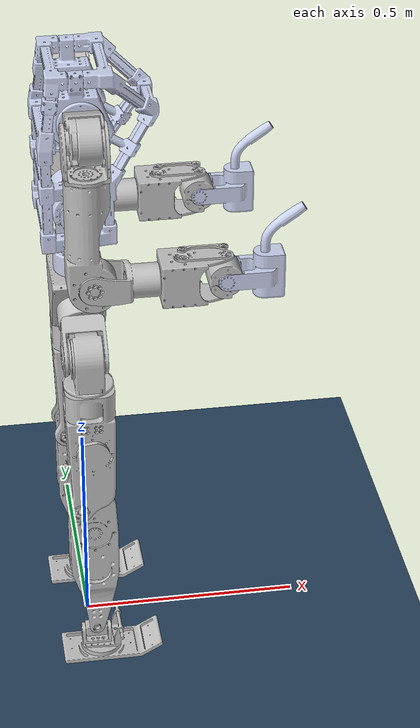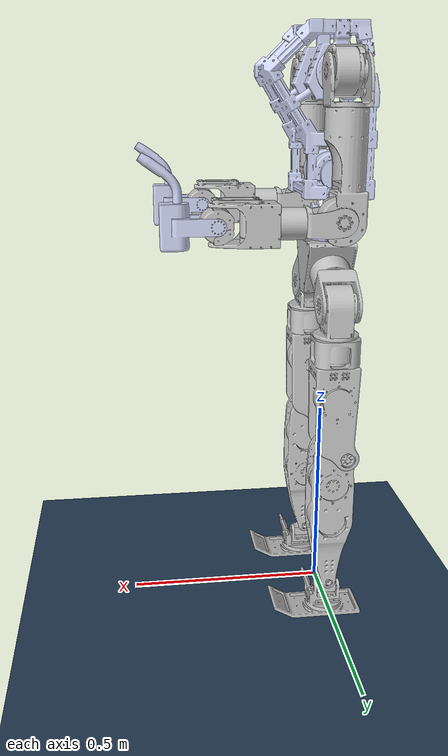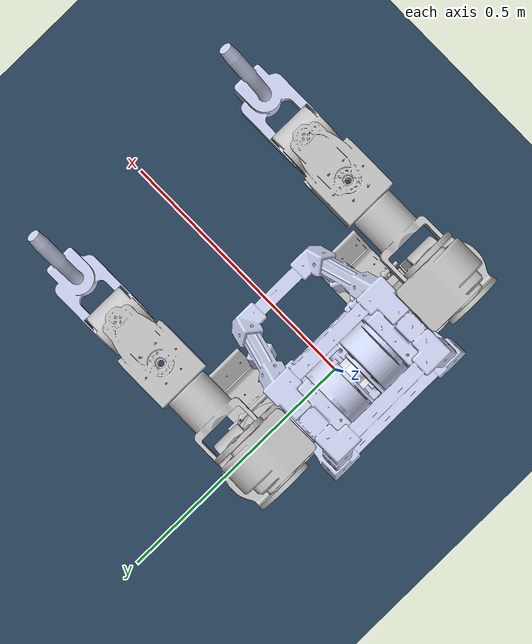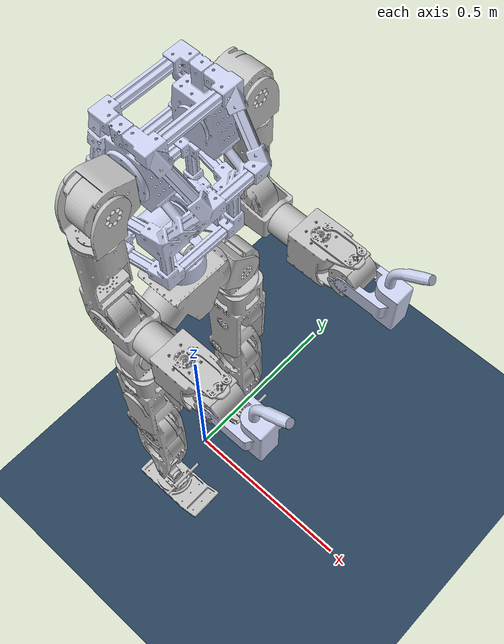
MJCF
<mujoco model="statue_main_for_urdf_w_waist">
  <compiler angle="radian" meshdir="meshes"/>

  <asset>
    <mesh name="pelvis_link" content_type="model/stl" file="pelvis_link.STL"/>
    <mesh name="left_hip_pitch_link" content_type="model/stl" file="left_hip_pitch_link.STL"/>
    <mesh name="left_hip_roll_link" content_type="model/stl" file="left_hip_roll_link.STL"/>
    <mesh name="left_hip_yaw_link" content_type="model/stl" file="left_hip_yaw_link.STL"/>
    <mesh name="left_knee_pitch_link" content_type="model/stl" file="left_knee_pitch_link.STL"/>
    <mesh name="left_ankle_pitch_link" content_type="model/stl" file="left_ankle_pitch_link.STL"/>
    <mesh name="left_ankle_roll_link" content_type="model/stl" file="left_ankle_roll_link.STL"/>
    <mesh name="right_hip_pitch_link" content_type="model/stl" file="right_hip_pitch_link.STL"/>
    <mesh name="right_hip_roll_link" content_type="model/stl" file="right_hip_roll_link.STL"/>
    <mesh name="right_hip_yaw_link" content_type="model/stl" file="right_hip_yaw_link.STL"/>
    <mesh name="right_knee_pitch_link" content_type="model/stl" file="right_knee_pitch_link.STL"/>
    <mesh name="right_ankle_pitch_link" content_type="model/stl" file="right_ankle_pitch_link.STL"/>
    <mesh name="right_ankle_roll_link" content_type="model/stl" file="right_ankle_roll_link.STL"/>
    <mesh name="waist_yaw_link" content_type="model/stl" file="waist_yaw_link.STL"/>
    <mesh name="waist_roll_link" content_type="model/stl" file="waist_roll_link.STL"/>
    <mesh name="waist_pitch_link" content_type="model/stl" file="waist_pitch_link.STL"/>
    <mesh name="left_shoulder_pitch_link" content_type="model/stl" file="left_shoulder_pitch_link.STL"/>
    <mesh name="left_shoulder_roll_link" content_type="model/stl" file="left_shoulder_roll_link.STL"/>
    <mesh name="left_shoulder_yaw_link" content_type="model/stl" file="left_shoulder_yaw_link.STL"/>
    <mesh name="left_elbow_pitch_link" content_type="model/stl" file="left_elbow_pitch_link.STL"/>
    <mesh name="left_wrist_roll_link" content_type="model/stl" file="left_wrist_roll_link.STL"/>
    <mesh name="left_wrist_yaw_link" content_type="model/stl" file="left_wrist_yaw_link.STL"/>
    <mesh name="left_welder" content_type="model/stl" file="left_welder.STL"/>
    <mesh name="right_shoulder_pitch_link" content_type="model/stl" file="right_shoulder_pitch_link.STL"/>
    <mesh name="right_shoulder_roll_link" content_type="model/stl" file="right_shoulder_roll_link.STL"/>
    <mesh name="right_shoulder_yaw_link" content_type="model/stl" file="right_shoulder_yaw_link.STL"/>
    <mesh name="right_elbow_pitch_link" content_type="model/stl" file="right_elbow_pitch_link.STL"/>
    <mesh name="right_wrist_roll_link" content_type="model/stl" file="right_wrist_roll_link.STL"/>
    <mesh name="right_wrist_yaw_link" content_type="model/stl" file="right_wrist_yaw_link.STL"/>
    <mesh name="right_welder" content_type="model/stl" file="right_welder.STL"/>
    <texture name="texplane" builtin="checker" height="512" width="512" rgb1=".2 .3 .4" rgb2=".1 .15 .2" type="2d"/>
    <material name="MatPlane" reflectance="0.5" shininess="0.01" specular="0.1" texrepeat="1 1" texture="texplane" texuniform="true"/>
  </asset>

  <worldbody>
    <light pos="0 0 1000" castshadow="true"/>
    <body name="pelvis_link" pos="0 0 0.885">
      <site name="imu" pos="0 0 0" rgba="0. 1. 0. .5"/>
      <inertial pos="0 0 0.00203708" quat="1 0 0 0" mass="2.792" diaginertia="0.01331061 0.00699516 0.01141619"/>
      <freejoint name="pelvis_link"/>
      <geom type="mesh" rgba="0.752941 0.752941 0.752941 1" mesh="pelvis_link"/>
      <body name="left_hip_pitch_link" pos="0 0.089613 -0.026765">
        <inertial pos="0.00120687 0.0321919 -0.022126" quat="0.648667 0.314246 0.620766 0.308431" mass="0.59" diaginertia="0.00147738 0.00117486 0.000975686"/>
        <joint name="left_hip_pitch_joint" pos="0 0 0" axis="0 0.906308 -0.422619" range="-2.79253 2.79253" actuatorfrcrange="-190 190"/>
        <geom type="mesh" rgba="0.75294 0.75294 0.75294 1" mesh="left_hip_pitch_link"/>
        <body name="left_hip_roll_link" pos="0.005 0.053192 -0.042099">
          <inertial pos="-0.00386468 0.00709863 -0.0206495" quat="0.997546 -0.0190194 0.0444148 0.0506713" mass="1.659" diaginertia="0.00331767 0.00278063 0.00199819"/>
          <joint name="left_hip_roll_joint" pos="0 0 0" axis="1 0 0" range="-0.523599 1.5708" actuatorfrcrange="-190 190"/>
          <geom type="mesh" rgba="0.75294 0.75294 0.75294 1" mesh="left_hip_roll_link"/>
          <body name="left_hip_yaw_link" pos="0 0.0058209 -0.078">
            <inertial pos="-0.00033252 0.00270006 -0.104969" quat="0.99952 -0.0122252 -0.0172129 -0.0226507" mass="3.58301" diaginertia="0.0274251 0.0264097 0.00729636"/>
            <joint name="left_hip_yaw_joint" pos="0 0 0" axis="0 0 1" range="-2.79253 2.79253" actuatorfrcrange="-190 190"/>
            <geom type="mesh" rgba="0.75294 0.75294 0.75294 1" mesh="left_hip_yaw_link"/>
            <body name="left_knee_pitch_link" pos="-0.03 0 -0.299">
              <inertial pos="0.0353064 0.00052044 -0.127609" quat="0.712871 0.0206849 -0.00135382 0.700988" mass="3.61355" diaginertia="0.0397111 0.0353266 0.00591074"/>
              <joint name="left_knee_pitch_joint" pos="0 0 0" axis="0 -1 0" range="-2.79253 0" actuatorfrcrange="-190 190"/>
              <geom type="mesh" rgba="0.75294 0.75294 0.75294 1" mesh="left_knee_pitch_link"/>
              <body name="left_ankle_pitch_link" pos="0.03 0 -0.353">
                <inertial pos="0 0 -0.0186834" quat="0.707107 0 0 0.707107" mass="0.4679" diaginertia="0.00017114 0.00014175 0.00012862"/>
                <joint name="left_ankle_pitch_joint" pos="0 0 0" axis="0 1 0" range="-0.872665 0.698132" actuatorfrcrange="-380 380"/>
                <geom type="mesh" rgba="0.75294 0.75294 0.75294 1" mesh="left_ankle_pitch_link"/>
                <body name="left_ankle_roll_link" pos="0 0 -0.0275">
                  <inertial pos="0.0254723 0 -0.033204" quat="0 0.753773 0 0.657135" mass="0.77978" diaginertia="0.00265853 0.00245185 0.00117912"/>
                  <joint name="left_ankle_roll_joint" pos="0 0 0" axis="1 0 0" range="-0.523599 0.523599" actuatorfrcrange="-380 380"/>
                  <geom type="mesh" rgba="0.75294 0.75294 0.75294 1" mesh="left_ankle_roll_link"/>
                </body>
              </body>
            </body>
          </body>
        </body>
      </body>
      <body name="right_hip_pitch_link" pos="0 -0.089614 -0.026765">
        <inertial pos="0.00120686 -0.0321919 -0.0221259" quat="0.308431 0.620766 0.314246 0.648667" mass="0.59" diaginertia="0.00147738 0.00117486 0.000975686"/>
        <joint name="right_hip_pitch_joint" pos="0 0 0" axis="0 -0.906308 -0.422619" range="-2.79253 2.79253" actuatorfrcrange="-190 190"/>
        <geom type="mesh" rgba="0.75294 0.75294 0.75294 1" mesh="right_hip_pitch_link"/>
        <body name="right_hip_roll_link" pos="0.005 -0.0531918 -0.0420992">
          <inertial pos="-0.0038816 -0.00726796 -0.0200622" quat="0.997191 0.0257615 0.0530214 -0.0462095" mass="1.659" diaginertia="0.00335316 0.00283826 0.00197006"/>
          <joint name="right_hip_roll_joint" pos="0 0 0" axis="1 0 0" range="-1.5708 0.523599" actuatorfrcrange="-190 190"/>
          <geom type="mesh" rgba="0.75294 0.75294 0.75294 1" mesh="right_hip_roll_link"/>
          <body name="right_hip_yaw_link" pos="0 -0.00582091 -0.078">
            <inertial pos="-0.00033433 -0.00270512 -0.104987" quat="0.999511 0.0122872 -0.0173029 0.0229597" mass="3.58301" diaginertia="0.0274302 0.0264144 0.00729607"/>
            <joint name="right_hip_yaw_joint" pos="0 0 0" axis="0 0 1" range="-2.79253 2.79253" actuatorfrcrange="-190 190"/>
            <geom type="mesh" rgba="0.75294 0.75294 0.75294 1" mesh="right_hip_yaw_link"/>
            <body name="right_knee_pitch_link" pos="-0.03 0 -0.299">
              <inertial pos="0.0353181 -0.00052044 -0.127616" quat="0.992128 -0.0171765 0.00944952 -0.123681" mass="3.61355" diaginertia="0.0399322 0.0396422 0.00591431"/>
              <joint name="right_knee_pitch_joint" pos="0 0 0" axis="0 1 0" range="0 2.79253" actuatorfrcrange="-190 190"/>
              <geom type="mesh" rgba="0.75294 0.75294 0.75294 1" mesh="right_knee_pitch_link"/>
              <body name="right_ankle_pitch_link" pos="0.03 0 -0.353">
                <inertial pos="0 0 -0.0186834" quat="0.707107 0 0 0.707107" mass="0.4679" diaginertia="0.00017114 0.00014175 0.00012862"/>
                <joint name="right_ankle_pitch_joint" pos="0 0 0" axis="0 1 0" range="-0.872665 0.698132" actuatorfrcrange="-380 380"/>
                <geom type="mesh" rgba="0.75294 0.75294 0.75294 1" mesh="right_ankle_pitch_link"/>
                <body name="right_ankle_roll_link" pos="0 0 -0.0275">
                  <inertial pos="0.025472 0 -0.033204" quat="0 0.753773 0 0.657135" mass="0.77978" diaginertia="0.0026585 0.0024519 0.0011791"/>
                  <joint name="right_ankle_roll_joint" pos="0 0 0" axis="1 0 0" range="-0.523599 0.523599" actuatorfrcrange="-380 380"/>
                  <geom type="mesh" rgba="0.75294 0.75294 0.75294 1" mesh="right_ankle_roll_link"/>
                </body>
              </body>
            </body>
          </body>
        </body>
      </body>
      <body name="waist_yaw_link" pos="0 0 0.066023">
        <inertial pos="1.042e-05 3.329e-05 0.040282" quat="0.00654982 0.706659 0.000505915 0.707524" mass="1.0746" diaginertia="0.00125089 0.00119086 0.00112052"/>
        <joint name="waist_yaw_joint" pos="0 0 0" axis="0 0 1" range="-2.96706 2.96706" actuatorfrcrange="-380 380"/>
        <geom type="mesh" rgba="0.79216 0.81961 0.93333 1" mesh="waist_yaw_link"/>
        <body name="waist_roll_link" pos="0 0 0.0815">
          <inertial pos="0 0 0.00802152" quat="0.5 0.5 -0.5 0.5" mass="0.467903" diaginertia="0.00013961 0.00013498 0.0001232"/>
          <joint name="waist_roll_joint" pos="0 0 0" axis="1 0 0" range="-2.96706 2.96706" actuatorfrcrange="-380 380"/>
          <geom type="mesh" rgba="0.89804 0.91765 0.92941 1" mesh="waist_roll_link"/>
          <body name="waist_pitch_link" pos="0 0 0.015">
            <inertial pos="0.0120549 0 0.205876" quat="0.999216 -9.07563e-06 -0.0395846 7.96809e-05" mass="12.5" diaginertia="0.246442 0.205212 0.0922755"/>
            <joint name="waist_pitch_joint" pos="0 0 0" axis="0 1 0" range="-2.96706 2.96706" actuatorfrcrange="-380 380"/>
            <geom type="mesh" rgba="0.79216 0.81961 0.93333 1" mesh="waist_pitch_link"/>
            <body name="left_shoulder_pitch_link" pos="0.011 0.1095 0.295">
              <inertial pos="-0.00037831 0.0541044 -0.00035447" quat="0.737726 0.674532 0.00554175 0.0271508" mass="1.242" diaginertia="0.00200618 0.00162576 0.00154715"/>
              <joint name="left_shoulder_pitch_joint" pos="0 0 0" axis="0 1 0" range="-2.96 2.96" actuatorfrcrange="-190 190"/>
              <geom type="mesh" rgba="0.75294 0.75294 0.75294 1" mesh="left_shoulder_pitch_link"/>
              <body name="left_shoulder_roll_link" pos="-0.00124976 0.065 0">
                <inertial pos="6.771e-05 0.00940829 -0.0335508" quat="0.562993 0.427343 0.565857 0.424527" mass="0.465" diaginertia="0.0012239 0.000883435 0.000771196"/>
                <joint name="left_shoulder_roll_joint" pos="0 0 0" axis="1 0 0" range="-0.52 2.26" actuatorfrcrange="-190 190"/>
                <geom type="mesh" rgba="0.75294 0.75294 0.75294 1" mesh="left_shoulder_roll_link"/>
                <body name="left_shoulder_yaw_link" pos="0.000999764 0.0147 -0.073">
                  <inertial pos="-0.00290128 -0.00027432 -0.144338" quat="0.781523 0.00134876 -0.000410432 0.623875" mass="2.741" diaginertia="0.0281465 0.0280058 0.00332486"/>
                  <joint name="left_shoulder_yaw_joint" pos="0 0 0" axis="0 0 1" range="-2.62 2.62" actuatorfrcrange="-150 150"/>
                  <geom type="mesh" rgba="0.75294 0.75294 0.75294 1" mesh="left_shoulder_yaw_link"/>
                  <body name="left_elbow_pitch_link" pos="0.00700454 0 -0.243">
                    <inertial pos="0.084937 0.00103543 -0.0054165" quat="-0.0166968 0.691844 0.0301983 0.721222" mass="0.995" diaginertia="0.00227415 0.00195837 0.000977239"/>
                    <joint name="left_elbow_pitch_joint" pos="0 0 0" axis="0 1 0" range="-1.0472 2.0944" actuatorfrcrange="-190 190"/>
                    <geom type="mesh" rgba="0.75294 0.75294 0.75294 1" mesh="left_elbow_pitch_link"/>
                    <body name="left_wrist_roll_link" pos="0.1405 0 -0.006">
                      <inertial pos="0.0536056 0 0.00568016" quat="0.419294 0.569379 0.569379 0.419294" mass="1.382" diaginertia="0.00307524 0.00234668 0.00191093"/>
                      <joint name="left_wrist_roll_joint" pos="0 0 0" axis="1 0 0" range="-2.0944 2.0944" actuatorfrcrange="-80 80"/>
                      <geom type="mesh" rgba="0.75294 0.75294 0.75294 1" mesh="left_wrist_roll_link"/>
                      <body name="left_wrist_yaw_link" pos="0.137 0 0">
                        <inertial pos="-0.00173065 -6.577e-05 -4.363e-05" quat="0.707125 0.707087 -0.00138126 0.00038794" mass="0.799" diaginertia="0.000649201 0.00058925 0.00058513"/>
                        <joint name="left_wrist_yaw_joint" pos="0 0 0" axis="0 0 1" range="-1.39 1.39" actuatorfrcrange="-80 80"/>
                        <geom type="mesh" rgba="0.75294 0.75294 0.75294 1" mesh="left_wrist_yaw_link"/>
                        <body name="left_wrist_pitch_link">
                          <inertial pos="0.0900671 1.807e-05 0.0104449" quat="0.68927 -0.102971 -0.100911 0.710014" mass="0.2" diaginertia="0.0005323 0.000475254 0.000192376"/>
                          <joint name="left_wrist_pitch_joint" pos="0 0 0" axis="0 -1 0" range="-0.785 0.785" actuatorfrcrange="-80 80"/>
                          <geom type="mesh" rgba="0.79216 0.81961 0.93333 1" mesh="left_welder"/>
                        </body>
                      </body>
                    </body>
                  </body>
                </body>
              </body>
            </body>
            <body name="right_shoulder_pitch_link" pos="0.011 -0.1095 0.295">
              <inertial pos="-0.00037831 -0.0541044 0.00035447" quat="0.737726 0.674532 -0.00554175 -0.0271508" mass="1.242" diaginertia="0.00200618 0.00162576 0.00154715"/>
              <joint name="right_shoulder_pitch_joint" pos="0 0 0" axis="0 -1 0" range="-2.96 2.96" actuatorfrcrange="-190 190"/>
              <geom type="mesh" rgba="0.75294 0.75294 0.75294 1" mesh="right_shoulder_pitch_link"/>
              <body name="right_shoulder_roll_link" pos="-0.00124976 -0.065 0">
                <inertial pos="0.00145192 -0.00937651 -0.0334292" quat="0.41695 0.572578 0.434762 0.556137" mass="0.475" diaginertia="0.00124961 0.000901245 0.000787432"/>
                <joint name="right_shoulder_roll_joint" pos="0 0 0" axis="1 0 0" range="-2.26 0.52" actuatorfrcrange="-190 190"/>
                <geom type="mesh" rgba="0.75294 0.75294 0.75294 1" mesh="right_shoulder_roll_link"/>
                <body name="right_shoulder_yaw_link" pos="0 -0.0147 -0.073">
                  <inertial pos="-0.00261341 -2e-06 -0.144303" quat="0.460893 0.00183533 0.00184553 0.887452" mass="2.737" diaginertia="0.028454 0.0280355 0.00333414"/>
                  <joint name="right_shoulder_yaw_joint" pos="0 0 0" axis="0 0 1" range="-2.62 2.62" actuatorfrcrange="-150 150"/>
                  <geom type="mesh" rgba="0.75294 0.75294 0.75294 1" mesh="right_shoulder_yaw_link"/>
                  <body name="right_elbow_pitch_link" pos="0.00700897 -0.000319256 -0.243">
                    <inertial pos="0.0851268 -0.00103939 -0.00542091" quat="0.0167591 0.69185 -0.0302942 0.721211" mass="0.991" diaginertia="0.00225517 0.00194373 0.000970026"/>
                    <joint name="right_elbow_pitch_joint" pos="0 0 0" axis="0 -1 0" range="-2.0944 1.0472" actuatorfrcrange="-190 190"/>
                    <geom type="mesh" rgba="0.75294 0.75294 0.75294 1" mesh="right_elbow_pitch_link"/>
                    <body name="right_wrist_roll_link" pos="0.1405 0 -0.006">
                      <inertial pos="0.053474 0 0.00562146" quat="0.420376 0.568602 0.568385 0.420612" mass="1.382" diaginertia="0.0030721 0.00234397 0.00191124"/>
                      <joint name="right_wrist_roll_joint" pos="0 0 0" axis="1 0 0" range="-2.0944 2.0944" actuatorfrcrange="-80 80"/>
                      <geom type="mesh" rgba="0.75294 0.75294 0.75294 1" mesh="right_wrist_roll_link"/>
                      <body name="right_wrist_yaw_link" pos="0.137 0 0">
                        <inertial pos="-0.00173065 -6.577e-05 -4.363e-05" quat="0.707125 0.707087 -0.00138126 0.00038794" mass="0.799" diaginertia="0.000649201 0.00058925 0.00058513"/>
                        <joint name="right_wrist_yaw_joint" pos="0 0 0" axis="0 0 1" range="-1.39 1.39" actuatorfrcrange="-80 80"/>
                        <geom type="mesh" rgba="0.75294 0.75294 0.75294 1" mesh="right_wrist_yaw_link"/>
                        <body name="right_wrist_pitch_link">
                          <inertial pos="0.0900671 0.001018 0.010444" quat="0.68927 -0.102971 -0.100911 0.710014" mass="0.2" diaginertia="0.0005323 0.000475254 0.000192376"/>
                          <joint name="right_wrist_pitch_joint" pos="0 0 0" axis="0 1 0" range="-0.785 0.785" actuatorfrcrange="-80 80"/>
                          <geom type="mesh" rgba="0.79216 0.81961 0.93333 1" mesh="right_welder"/>
                        </body>
                      </body>
                    </body>
                  </body>
                </body>
              </body>
            </body>
          </body>
        </body>
      </body>
    </body>
  </worldbody>

  <actuator>
    <position name="left_hip_pitch_joint"       joint="left_hip_pitch_joint"       ctrllimited="true" kp="150" kv="5" ctrlrange="-140 140" />
    <position name="left_hip_roll_joint"        joint="left_hip_roll_joint"        ctrllimited="true" kp="150" kv="5" ctrlrange="-140 140" />
    <position name="left_hip_yaw_joint"         joint="left_hip_yaw_joint"         ctrllimited="true" kp="200" kv="5" ctrlrange="-140 140" />
    <position name="left_knee_pitch_joint"      joint="left_knee_pitch_joint"      ctrllimited="true" kp="200" kv="5" ctrlrange="-140 140" />
    <position name="left_ankle_pitch_joint"     joint="left_ankle_pitch_joint"     ctrllimited="true" kp=" 50" kv="4" ctrlrange="-140 140" />
    <position name="left_ankle_roll_joint"      joint="left_ankle_roll_joint"      ctrllimited="true" kp=" 50" kv="4" ctrlrange="-140 140" />
    <position name="right_hip_pitch_joint"      joint="right_hip_pitch_joint"      ctrllimited="true" kp="150" kv="5" ctrlrange="-140 140" />
    <position name="right_hip_roll_joint"       joint="right_hip_roll_joint"       ctrllimited="true" kp="150" kv="5" ctrlrange="-140 140" />
    <position name="right_hip_yaw_joint"        joint="right_hip_yaw_joint"        ctrllimited="true" kp="200" kv="5" ctrlrange="-140 140" />
    <position name="right_knee_pitch_joint"     joint="right_knee_pitch_joint"     ctrllimited="true" kp="200" kv="5" ctrlrange="-140 140" />
    <position name="right_ankle_pitch_joint"    joint="right_ankle_pitch_joint"    ctrllimited="true" kp=" 50" kv="4" ctrlrange="-140 140" />
    <position name="right_ankle_roll_joint"     joint="right_ankle_roll_joint"     ctrllimited="true" kp=" 50" kv="4" ctrlrange="-140 140" />
    <position name="waist_yaw_joint"            joint="waist_yaw_joint"            ctrllimited="true" kp="150" kv="5" ctrlrange="-140 140" />
    <position name="waist_roll_joint"           joint="waist_roll_joint"           ctrllimited="true" kp="150" kv="5" ctrlrange="-140 140" />
    <position name="waist_pitch_joint"          joint="waist_pitch_joint"          ctrllimited="true" kp="150" kv="5" ctrlrange="-140 140" />
    <position name="left_shoulder_pitch_joint"  joint="left_shoulder_pitch_joint"  ctrllimited="true" kp="100" kv="5" ctrlrange="-140 140" />
    <position name="left_shoulder_roll_joint"   joint="left_shoulder_roll_joint"   ctrllimited="true" kp="100" kv="5" ctrlrange="-140 140" />
    <position name="left_shoulder_yaw_joint"    joint="left_shoulder_yaw_joint"    ctrllimited="true" kp="100" kv="5" ctrlrange=" -50  50" />
    <position name="left_elbow_pitch_joint"     joint="left_elbow_pitch_joint"     ctrllimited="true" kp="100" kv="5" ctrlrange="-140 140" />
    <position name="left_wrist_roll_joint"      joint="left_wrist_roll_joint"      ctrllimited="true" kp=" 25" kv="4" ctrlrange=" -25  25" />
    <position name="left_wrist_pitch_joint"     joint="left_wrist_pitch_joint"     ctrllimited="true" kp=" 25" kv="4" ctrlrange=" -25  25" />
    <position name="left_wrist_yaw_joint"       joint="left_wrist_yaw_joint"       ctrllimited="true" kp=" 25" kv="4" ctrlrange=" -25  25" />
    <position name="right_shoulder_pitch_joint" joint="right_shoulder_pitch_joint" ctrllimited="true" kp="100" kv="5" ctrlrange="-140 140" />
    <position name="right_shoulder_roll_joint"  joint="right_shoulder_roll_joint"  ctrllimited="true" kp="100" kv="5" ctrlrange="-140 140" />
    <position name="right_shoulder_yaw_joint"   joint="right_shoulder_yaw_joint"   ctrllimited="true" kp="100" kv="5" ctrlrange=" -50  50" />
    <position name="right_elbow_pitch_joint"    joint="right_elbow_pitch_joint"    ctrllimited="true" kp="100" kv="5" ctrlrange="-140 140" />
    <position name="right_wrist_roll_joint"     joint="right_wrist_roll_joint"     ctrllimited="true" kp=" 25" kv="4" ctrlrange=" -25  25" />
    <position name="right_wrist_pitch_joint"    joint="right_wrist_pitch_joint"    ctrllimited="true" kp=" 25" kv="4" ctrlrange=" -25  25" />
    <position name="right_wrist_yaw_joint"      joint="right_wrist_yaw_joint"      ctrllimited="true" kp=" 25" kv="4" ctrlrange=" -25  25" />
  </actuator>

  <contact>

    <!-- Left leg parent-child -->
    <exclude body1="pelvis_link" body2="left_hip_pitch_link" />
    <exclude body1="left_hip_pitch_link" body2="left_hip_roll_link" />
    <exclude body1="left_hip_roll_link"  body2="left_hip_yaw_link" />
    <exclude body1="left_hip_yaw_link"   body2="left_knee_pitch_link" />
    <exclude body1="left_knee_pitch_link" body2="left_ankle_pitch_link" />
    <exclude body1="left_knee_pitch_link" body2="left_ankle_roll_link" />
    <exclude body1="left_ankle_pitch_link" body2="left_ankle_roll_link" />

    <!-- Right leg parent-child -->
    <exclude body1="pelvis_link" body2="right_hip_pitch_link" />
    <exclude body1="right_hip_pitch_link" body2="right_hip_roll_link" />
    <exclude body1="right_hip_roll_link"  body2="right_hip_yaw_link" />
    <exclude body1="right_hip_yaw_link"   body2="right_knee_pitch_link" />
    <exclude body1="right_knee_pitch_link" body2="right_ankle_pitch_link" />
    <exclude body1="right_knee_pitch_link" body2="right_ankle_roll_link" />
    <exclude body1="right_ankle_pitch_link" body2="right_ankle_roll_link" />

    <exclude body1="pelvis_link" body2="waist_yaw_link" />
    <exclude body1="waist_yaw_link" body2="waist_roll_link" />
    <exclude body1="waist_yaw_link" body2="waist_pitch_link" />
    <exclude body1="waist_roll_link" body2="waist_pitch_link" />

    <exclude body1="right_wrist_roll_link" body2="right_wrist_yaw_link" />
    <exclude body1="right_wrist_roll_link" body2="right_wrist_pitch_link" />
    <exclude body1="right_wrist_yaw_link" body2="right_wrist_pitch_link" />

    <exclude body1="left_wrist_roll_link" body2="left_wrist_yaw_link" />
    <exclude body1="left_wrist_roll_link" body2="left_wrist_pitch_link" />
    <exclude body1="left_wrist_yaw_link" body2="left_wrist_pitch_link" />
  </contact>

  <sensor>
    <gyro name="gyro" site="imu"/>
    <accelerometer name="accelerometer" site="imu"/>
  </sensor>

  <!-- setup scene -->
  <statistic center="1.0 0.7 1.0" extent="0.8"/>
    <visual>
        <headlight diffuse="0.6 0.6 0.6" ambient="0.1 0.1 0.1" specular="0.9 0.9 0.9"/>
        <rgba haze="0.15 0.25 0.35 1"/>
        <global azimuth="-140" elevation="-20" offwidth="2560" offheight="1920"/>
    </visual>
    <asset>
        <texture type="skybox" builtin="flat" rgb1="0 0 0" rgb2="0 0 0" width="512" height="3072"/>
        <texture type="2d" name="groundplane" builtin="checker" mark="edge" rgb1="0.2 0.3 0.4" rgb2="0.1 0.2 0.3" markrgb="0.8 0.8 0.8" width="300" height="300"/>
        <material name="groundplane" texture="groundplane" texuniform="true" texrepeat="5 5" reflectance="0.2"/>
    </asset>
    <worldbody>
        <light pos="1 0 3.5" dir="0 0 -1" directional="true"/>
        <geom contype="15" conaffinity="15"  name="floor" size="0 0 0.05" type="plane" material="groundplane"/>
    </worldbody>
</mujoco>
